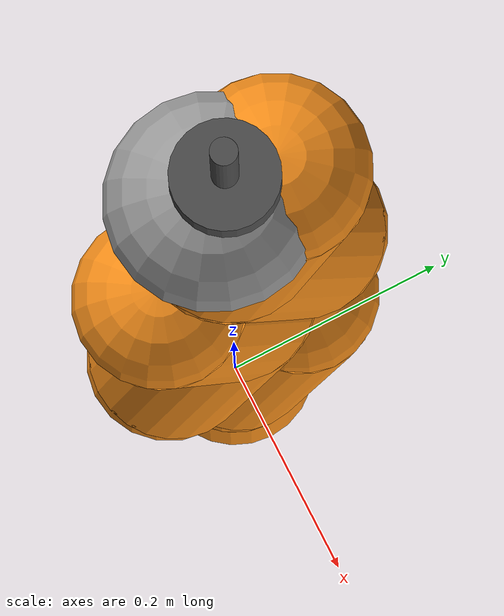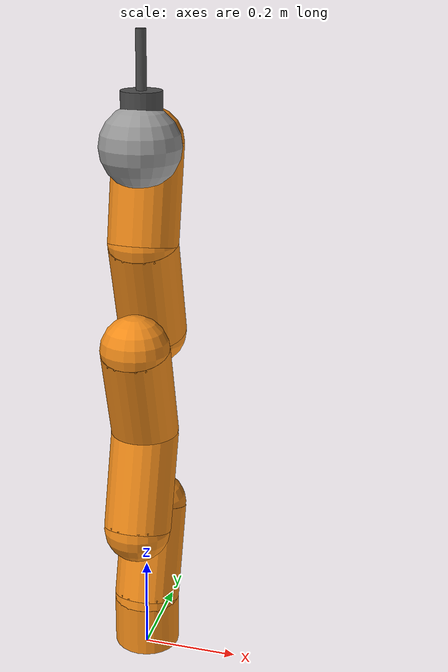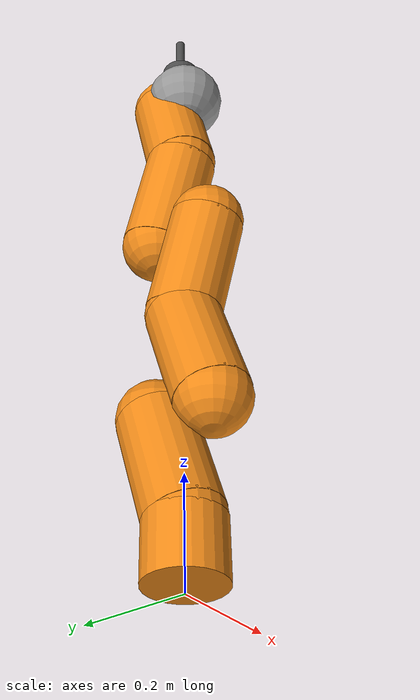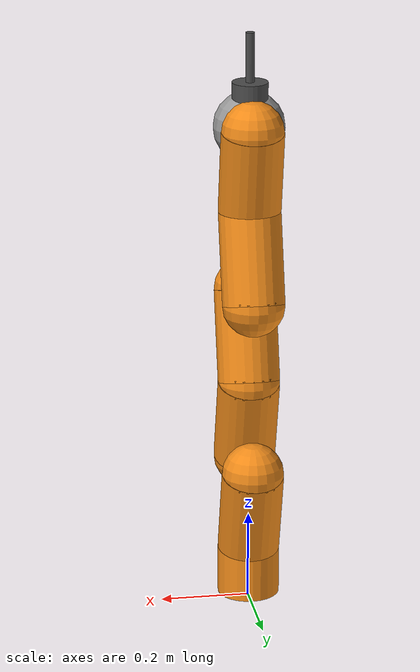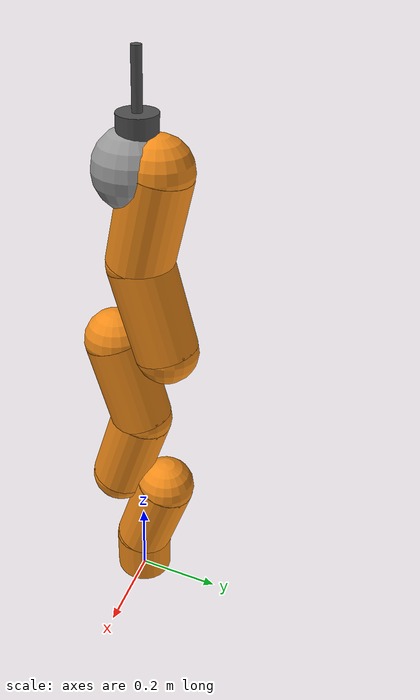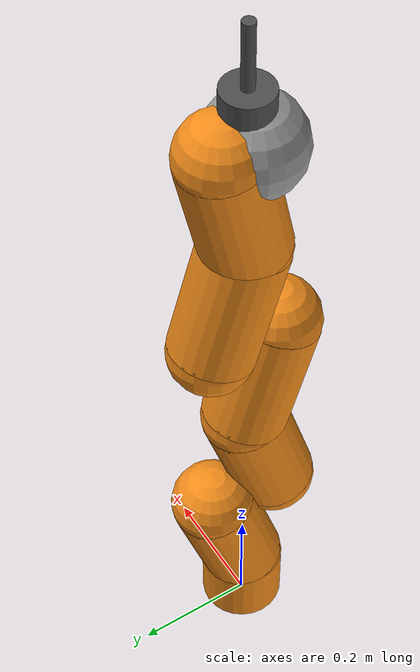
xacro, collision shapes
<?xml version="1.0"?>
<robot xmlns:xacro="http://www.ros.org/wiki/xacro" name="single_lwr_robot">

	<!-- arguments, which hardware interface to use (gazebo, fri, fril or mock) and its settings -->
	<xacro:arg name="hardware_interface" default="gazebo"/>
	<xacro:arg name="controllers_file" default="$(find single_lwr_robot)/config/controllers.yaml"/>
	<xacro:arg name="port" default="49939"/>
	<xacro:arg name="ip" default="192.168.0.10"/>
	<xacro:arg name="init_file" default="$(find single_lwr_robot)/config/980241-FRI-Driver.init"/>

	<!-- Include all models -->
	<xacro:include filename="$(find lwr_description)/model/kuka_lwr.urdf.xacro"/>

	<!-- and assemble your robot, the arm is fixed to the world (gazebo welds the "world" link to the ground) -->
	<link name="world"/>

	<!-- using the models -->
	<!-- the name MUST match the name used in the controllers configuration (lwr_a1_joint, ...) -->
	<xacro:kuka_lwr parent="world" name="lwr" hardware_interface="$(arg hardware_interface)" controllers_file="$(arg controllers_file)"
	                port="$(arg port)" ip="$(arg ip)" init_file="$(arg init_file)">
		<origin xyz="0 0 0.0125" rpy="0 0 0"/>	<!-- set to match result of SNS paper /-->
	</xacro:kuka_lwr>

</robot>

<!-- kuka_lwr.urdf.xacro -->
<robot name="kuka_lwr" xmlns:xacro="http://www.ros.org/wiki/xacro">

	<!-- utils /-->
	<xacro:include filename="$(find lwr_description)/model/utils.xacro"/>
	<xacro:include filename="$(find lwr_description)/model/kuka_materials.xacro"
	/>

	<!-- gazebo and ros2_control models /-->
	<xacro:include filename="$(find lwr_description)/model/kuka_lwr.gazebo.xacro"/>
	<xacro:include filename="$(find lwr_description)/model/kuka_lwr.ros2_control.xacro"/>

	<!-- properties /-->
	<xacro:property name="base_mass" value="2.0"/>
	<xacro:property name="link_mass" value="2.35"/>
    <xacro:property name="wrist_mass" value="1.1"/>
    <xacro:property name="tip_mass" value="0.25"/>
	<xacro:property name="tool_mass" value="0.5"/>	<!-- set very arbitrarily /-->
	<xacro:property name="velocity_scale" value="1"/>
	<xacro:property name="effort_scale" value="1"/>
	<xacro:property name="tool_length" value="0.1353"/> <!-- set to match result of SNS paper /-->

	<xacro:property name="max_stiffness" value="5000"/>
	<xacro:property name="min_stiffness" value="0"/>
	<xacro:property name="rate_stiffness" value="20000"/> <!-- reflex to stiffness -->

	<!-- URDF model /-->
	<!-- hardware_interface is gazebo, fri, fril or mock (see kuka_lwr.ros2_control.xacro) /-->
	<!-- controllers_file is the controller manager parameters file, only used by the gazebo_ros2_control plugin /-->
	<xacro:macro name="kuka_lwr" params="parent name *origin hardware_interface:=gazebo controllers_file:='' port:=49939 ip:=192.168.0.10 init_file:=''">

		<!-- First (shoulder) element of the arm. Fixed to its parent. -->
		<joint name="${parent}_${name}_base_joint" type="fixed">
			<xacro:insert_block name="origin"/>
			<origin xyz="0 0 0" rpy="0 0 0"/>
			<parent link="${parent}"/>
			<child link="${name}_base_link"/>
		</joint>

		<link name="${name}_base_link">
			<inertial>
				<mass value="${base_mass}"/>
				<origin xyz="0 0 0.055"  />
				<xacro:cylinder_inertia_def radius="0.06" length="0.11" mass="${base_mass}"/>
			</inertial>
			<visual>
				<origin xyz="0 0 0" rpy="0 0 ${M_PI}"/>
				<geometry>
					<mesh filename="package://lwr_description/meshes/lwr4plus/visual/base.STL"/>
				</geometry>
				<material name="Kuka/Orange"/>
			</visual>
			<collision>
				<origin xyz="0 0 0.055" rpy="0 0 ${M_PI}"/>
				<geometry>
					<cylinder radius="0.07" length="0.11"/>
				</geometry>
			</collision>
		</link>

		<!-- Second segment of the arm. Joint along z-axis -->
		<joint name="${name}_a1_joint" type="revolute">
			<origin xyz="0 0 0.11" rpy="0 0 0"/>
			<axis xyz="0 0 1"/>
			<limit lower="${-170 * M_PI / 180}" upper="${170 * M_PI / 180}" effort="176" velocity="${velocity_scale * 110 * M_PI / 180}" />
			<dynamics friction="10.0" damping="1.0"/>
			<parent link="${name}_base_link"/>
			<child link="${name}_1_link"/>
		</joint>

		<joint name="${name}_a1_joint_stiffness" type="revolute">
			<axis xyz="0 0 1"/>
			<limit lower="${min_stiffness}" upper="${max_stiffness}" effort="0" velocity="${rate_stiffness}" />
			<safety_controller soft_lower_limit="${min_stiffness}" soft_upper_limit="${max_stiffness}" k_position="30" k_velocity="30"/>
			<parent link="${name}_base_link"/>
			<child link="${name}_1_link_dummy"/>
		</joint>
		<link name="${name}_1_link_dummy"/>

		<link name="${name}_1_link">
			<inertial>
				<mass value="${link_mass}"/>
				<origin rpy="0 0 0" xyz="0 -0.06 0.130"/>
				<xacro:cuboid_inertia_def length="0.12" width="0.06" height="0.260" mass="${link_mass}"/>
			</inertial>
			<visual>
				<origin xyz="0 0 -0.008" rpy="0 0 ${M_PI}"/>
				<geometry>
					<mesh filename="package://lwr_description/meshes/lwr4plus/visual/link_1.STL"/>
				</geometry>
				<material name="Kuka/Orange"/>
			</visual>
			<collision>
				<origin xyz="0 0 0.0" rpy="0 0 0"/>
				<geometry>
					<sphere radius="0.07"/>
				</geometry>
			</collision>
			<collision>
				<origin xyz="0 0.06 0.2" rpy="0 0 0"/>
				<geometry>
					<sphere radius="0.07"/>
				</geometry>
			</collision>
			<collision>
				<origin xyz="0 0.03 0.1" rpy="-0.291 0 0"/>
				<geometry>
					<cylinder radius="0.07" length="0.208"/>
				</geometry>
			</collision>
		</link>

		<!-- Third segment of the arm. Joint along y-axis -->
		<joint name="${name}_a2_joint" type="revolute">
			<origin xyz="0 0 0.2005" rpy="0 0 0"/>
			<axis xyz="0 -1 0"/>
			<limit lower="${-120 * M_PI / 180}" upper="${120 * M_PI / 180}" effort="176" velocity="${velocity_scale * 110 * M_PI / 180}" />
			<dynamics friction="10.0" damping="1.0"/>
			<parent link="${name}_1_link"/>
			<child link="${name}_2_link"/>
		</joint>

		<joint name="${name}_a2_joint_stiffness" type="revolute">
			<axis xyz="0 0 1"/>
			<limit lower="${min_stiffness}" upper="${max_stiffness}" effort="0" velocity="${rate_stiffness}" />
			<safety_controller soft_lower_limit="${min_stiffness}" soft_upper_limit="${max_stiffness}" k_position="30" k_velocity="30"/>
			<parent link="${name}_1_link"/>
			<child link="${name}_2_link_dummy"/>
		</joint>
		<link name="${name}_2_link_dummy"/>

		<link name="${name}_2_link">
			<inertial>
				<mass value="${link_mass}"/>
				<origin rpy="0 0 0" xyz="0 0.06 ${0.130 - 0.06}"/>
				<xacro:cuboid_inertia_def length="0.12" width="0.06" height="0.260" mass="${link_mass}"/>
			</inertial>

			<visual>
				<origin xyz="0 0 0.0" rpy="0 0 ${M_PI}"/>
				<geometry>
					<mesh filename="package://lwr_description/meshes/lwr4plus/visual/link_2.STL"/>
				</geometry>
				<material name="Kuka/Orange"/>
			</visual>
			<collision>
				<origin xyz="0 0 0.2" rpy="0 0 0"/>
				<geometry>
					<sphere radius="0.07"/>
				</geometry>
			</collision>
			<collision>
				<origin xyz="0 -0.06 0.0" rpy="0 0 0"/>
				<geometry>
					<sphere radius="0.07"/>
				</geometry>
			</collision>
			<collision>
				<origin xyz="0 -0.03 0.1" rpy="-0.291 0 0"/>
				<geometry>
					<cylinder radius="0.07" length="0.208"/>
				</geometry>
			</collision>
		</link>

		<!-- Fourth element of the arm. z-axis -->
		<joint name="${name}_e1_joint" type="revolute">
			<origin xyz="0 0 0.20" rpy="0 0 0"/>
			<axis xyz="0 0 1"/>
			<limit lower="${-170 * M_PI / 180}" upper="${170 * M_PI / 180}" effort="100" velocity="${velocity_scale * 128 * M_PI / 180}" />
			<dynamics friction="10.0" damping="1.0"/>
			<parent link="${name}_2_link"/>
			<child link="${name}_3_link"/>
		</joint>

		<joint name="${name}_e1_joint_stiffness" type="revolute">
			<axis xyz="0 0 1"/>
			<limit lower="${min_stiffness}" upper="${max_stiffness}" effort="0" velocity="${rate_stiffness}" />
			<safety_controller soft_lower_limit="${min_stiffness}" soft_upper_limit="${max_stiffness}" k_position="30" k_velocity="30"/>
			<parent link="${name}_2_link"/>
			<child link="${name}_3_link_dummy"/>
		</joint>
		<link name="${name}_3_link_dummy"/>

		<link name="${name}_3_link">
			<inertial>
				<mass value="${link_mass}"/>
				<origin rpy="0 0 0" xyz="0 0.06 0.130"/>
				<xacro:cuboid_inertia_def length="0.12" width="0.06" height="0.260" mass="${link_mass}"/>
			</inertial>

			<visual>
				<origin xyz="0 0 -0.008" rpy="0 0 ${M_PI}"/>
				<geometry>
					<mesh filename="package://lwr_description/meshes/lwr4plus/visual/link_3.STL"/>
				</geometry>
				<material name="Kuka/Orange"/>
			</visual>
			<collision>
				<origin xyz="0 0 0.0" rpy="0 0 0"/>
				<geometry>
					<sphere radius="0.07"/>
				</geometry>
			</collision>
			<collision>
				<origin xyz="0 -0.06 0.2" rpy="0 0 0"/>
				<geometry>
					<sphere radius="0.07"/>
				</geometry>
			</collision>
			<collision>
				<origin xyz="0 -0.03 0.1" rpy="0.291 0 0"/>
				<geometry>
					<cylinder radius="0.07" length="0.208"/>
				</geometry>
			</collision>
		</link>

		<!-- fifth element of the arm. x-axis -->
		<joint name="${name}_a3_joint" type="revolute">
			<origin xyz="0 0 0.20" rpy="0 0 0"/>
			<axis xyz="0 1 0"/>
			<limit lower="${-120 * M_PI / 180}" upper="${120 * M_PI / 180}" effort="100" velocity="${velocity_scale * 128 * M_PI / 180}" />
			<dynamics friction="10.0" damping="1.0"/>
			<parent link="${name}_3_link"/>
			<child link="${name}_4_link"/>
		</joint>

		<joint name="${name}_a3_joint_stiffness" type="revolute">
			<axis xyz="0 0 1"/>
			<limit lower="${min_stiffness}" upper="${max_stiffness}" effort="0" velocity="${rate_stiffness}" />
			<safety_controller soft_lower_limit="${min_stiffness}" soft_upper_limit="${max_stiffness}" k_position="30" k_velocity="30"/>
			<parent link="${name}_3_link"/>
			<child link="${name}_4_link_dummy"/>
		</joint>
		<link name="${name}_4_link_dummy"/>

		<link name="${name}_4_link">
			<inertial>
				<mass value="${link_mass}"/>
				<origin rpy="0 0 0" xyz="0 -0.06 ${0.130 - 0.06}"/>
				<xacro:cuboid_inertia_def length="0.12" width="0.06" height="0.2600" mass="${link_mass}"/>
			</inertial>

			<visual>
				<origin xyz="0 0 0.0" rpy="0 0 ${M_PI}"/>
				<geometry>
					<mesh filename="package://lwr_description/meshes/lwr4plus/visual/link_4.STL"/>
				</geometry>
				<material name="Kuka/Orange"/>
			</visual>
			<collision>
			<origin xyz="0 0 0.2" rpy="0 0 0"/>
			<geometry>
				<sphere radius="0.07"/>
			</geometry>
			</collision>
			<collision>
				<origin xyz="0 0.06 0.0" rpy="0 0 0"/>
				<geometry>
					<sphere radius="0.07"/>
				</geometry>
			</collision>
			<collision>
				<origin xyz="0 0.03 0.1" rpy="0.291 0 0"/>
				<geometry>
					<cylinder radius="0.07" length="0.208"/>
				</geometry>
			</collision>
		</link>

		<!-- Sixth element of the arm. z-axis -->
		<joint name="${name}_a4_joint" type="revolute">
			<origin xyz="0 0 0.20" rpy="0 0 0"/>
			<axis xyz="0 0 1"/>
			<limit lower="${-170 * M_PI / 180}" upper="${170 * M_PI / 180}" effort="100" velocity="${velocity_scale * 204 * M_PI / 180}" />
			<dynamics friction="10.0" damping="1.0"/>
			<parent link="${name}_4_link"/>
			<child link="${name}_5_link"/>
		</joint>

		<joint name="${name}_a4_joint_stiffness" type="revolute">
			<axis xyz="0 0 1"/>
			<limit lower="${min_stiffness}" upper="${max_stiffness}" effort="0" velocity="${rate_stiffness}" />
			<safety_controller soft_lower_limit="${min_stiffness}" soft_upper_limit="${max_stiffness}" k_position="30" k_velocity="30"/>
			<parent link="${name}_4_link"/>
			<child link="${name}_5_link_dummy"/>
		</joint>
		<link name="${name}_5_link_dummy"/>

		<link name="${name}_5_link">
			<inertial>
				<mass value="${link_mass}"/>
				<origin rpy="0 0 0" xyz="0 0 0.124"/>
				<xacro:cuboid_inertia_def length="0.12" width="0.06" height="0.248" mass="${link_mass}"/>
			</inertial>

			<visual>
				<origin xyz="0 0 -0.008" rpy="0 0 ${M_PI}"/>
				<geometry name="${name}_5_geom">
					<mesh filename="package://lwr_description/meshes/lwr4plus/visual/link_5.STL"/>
				</geometry>
				<material name="Kuka/Orange"/>
			</visual>

			<collision>
				<origin xyz="0 0 0.0" rpy="0 0 0"/>
				<geometry>
					<sphere radius="0.07"/>
				</geometry>
			</collision>
			<collision>
				<origin xyz="0 0.04 0.19" rpy="0 0 0"/>
				<geometry>
					<sphere radius="0.07"/>
				</geometry>
			</collision>
			<collision>
				<origin xyz="0 0.02 0.095" rpy="-0.207 0 0"/>
				<geometry>
					<cylinder radius="0.07" length="0.198"/>
				</geometry>
			</collision>
		</link>

		<!-- Seventh element of the arm. z-axis -->
		<joint name="${name}_a5_joint" type="revolute">
			<origin xyz="0 0 0.19" rpy="0 0 0"/>
			<axis xyz="0 -1 0"/>
			<limit lower="${-120 * M_PI / 180}" upper="${120 * M_PI / 180}" effort="38" velocity="${velocity_scale * 184 * M_PI / 180}" />
			<dynamics friction="10.0" damping="1.0"/>
			<parent link="${name}_5_link"/>
			<child link="${name}_6_link"/>
		</joint>

		<joint name="${name}_a5_joint_stiffness" type="revolute">
			<axis xyz="0 0 1"/>
			<limit lower="${min_stiffness}" upper="${max_stiffness}" effort="0" velocity="${rate_stiffness}" />
			<safety_controller soft_lower_limit="${min_stiffness}" soft_upper_limit="${max_stiffness}" k_position="30" k_velocity="30"/>
			<parent link="${name}_5_link"/>
			<child link="${name}_6_link_dummy"/>
		</joint>
		<link name="${name}_6_link_dummy"/>

		<link name="${name}_6_link">
			<inertial>
				<mass value="${wrist_mass}"/>
				<origin rpy="0 0 0" xyz="0 0 0.0625"/>
				<xacro:cuboid_inertia_def length="0.125" width="0.125" height="0.125" mass="${wrist_mass}"/>
			</inertial>

			<visual>
				<origin xyz="0 0 0" rpy="0 0 ${M_PI}"/>
				<geometry>
					<mesh filename="package://lwr_description/meshes/lwr4plus/visual/link_6.STL"/>
				</geometry>
			<material name="Kuka/Grey"/>
			</visual>
			<collision>
			<origin xyz="0 -0.01 0" rpy="0 0 ${M_PI}"/>
			<geometry>
				<sphere radius="0.08"/>
			</geometry>
			</collision>
		</link>

		<!-- Eighth element of the arm. z-axis -->
		<joint name="${name}_a6_joint" type="revolute">
			<origin xyz="0 0 0.078" rpy="0 0 0"/>
			<axis xyz="0 0 1"/>
			<limit lower="${-170 * M_PI / 180}" upper="${170 * M_PI / 180}" effort="38" velocity="${velocity_scale * 184 * M_PI / 180}" />
			<dynamics friction="10.0" damping="1.0"/>
			<parent link="${name}_6_link"/>
			<child link="${name}_7_link"/>
		</joint>

		<joint name="${name}_a6_joint_stiffness" type="revolute">
			<axis xyz="0 0 1"/>
			<limit lower="${min_stiffness}" upper="${max_stiffness}" effort="0" velocity="${rate_stiffness}" />
			<safety_controller soft_lower_limit="${min_stiffness}" soft_upper_limit="${max_stiffness}" k_position="30" k_velocity="30"/>
			<parent link="${name}_6_link"/>
			<child link="${name}_7_link_dummy"/>
		</joint>
		<link name="${name}_7_link_dummy"/>

		<link name="${name}_7_link">
			<inertial>
				<mass value="${tip_mass}"/>
				<origin xyz="0 0 0"/>
				<xacro:cuboid_inertia_def length="0.1" width="0.1" height="0.1" mass="${tip_mass}"/>
			</inertial>
			<visual>
				<origin xyz="0 0 0" rpy="0 0 ${M_PI}"/>
				<geometry>
					<mesh filename="package://lwr_description/meshes/lwr4plus/visual/link_7.STL"/>
				</geometry>
			<material name="Kuka/DarkGrey"/>
			</visual>

			<collision>
			<origin xyz="0 0 0" rpy="0 0 ${M_PI}"/>
			<geometry>
				<cylinder radius="0.04" length="0.05"/>
			</geometry>
			</collision>
		</link>

		<!-- Tool: Stick mounted on the flange. The tool frame is at its tip. -->
		<joint name="${name}_tool_joint" type="fixed">
			<origin xyz="0 0 ${tool_length}" rpy="0 0 0"/>
			<parent link="${name}_7_link"/>
			<child link="${name}_tool_link"/>
		</joint>

		<link name="${name}_tool_link">
			<inertial>
				<mass value="${tool_mass}"/>
				<origin xyz="0 0 0.05"/>
				<xacro:cuboid_inertia_def length="0.02" width="0.02" height="${tool_length}" mass="${tool_mass}"/>
			</inertial>
			<visual>
				<origin xyz="0 0 ${-tool_length/2}" rpy="0 0 0"/>
				<geometry>
					<cylinder radius="0.01" length="${tool_length}"/>
				</geometry>
			<material name="Kuka/DarkGrey"/>
			</visual>

			<collision>
			<origin xyz="0 0 ${-tool_length/2}" rpy="0 0 0"/>
			<geometry>
				<cylinder radius="0.01" length="${tool_length}"/>
			</geometry>
			</collision>
		</link>

		<xacro:if value="${hardware_interface == 'gazebo'}">
			<xacro:kuka_lwr_gazebo name="${name}" controllers_file="${controllers_file}"/>
		</xacro:if>
		<xacro:kuka_lwr_ros2_control name="${name}" hardware_interface="${hardware_interface}" port="${port}" ip="${ip}" init_file="${init_file}"/>

	</xacro:macro>

</robot>
